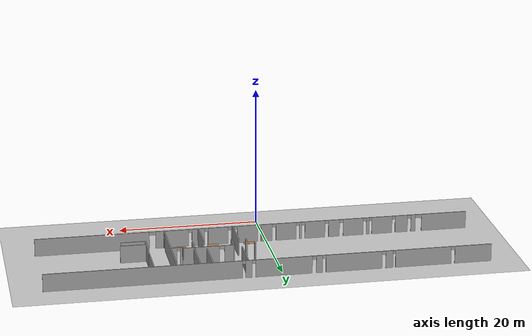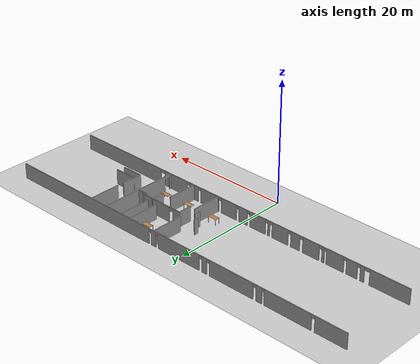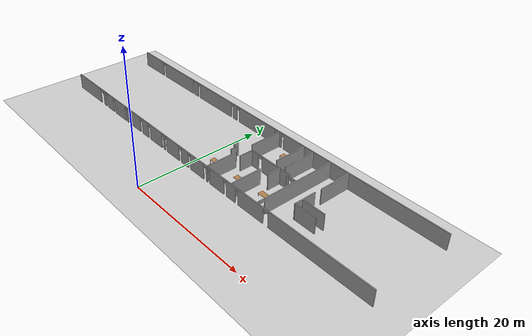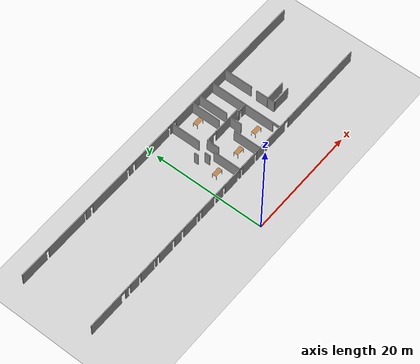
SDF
<sdf version="1.6">
 <world name="default">
  <model name="ground_plane">
   <static>1</static>
   <link name="link">
    <collision name="collision">
     <geometry><plane><normal>0 0 1</normal><size>100 100</size></plane></geometry>
     <surface><friction><ode><mu>100</mu><mu2>50</mu2></ode></friction></surface>
    </collision>
    <visual name="visual">
     <cast_shadows>0</cast_shadows>
     <geometry><plane><normal>0 0 1</normal><size>100 100</size></plane></geometry>
     <material>
      <script><uri>file://media/materials/scripts/gazebo.material</uri><name>Gazebo/Grey</name></script>
     </material>
    </visual>
   </link>
  </model>
  <model name="se1f1_fin.sdf">
   <pose>1.7543 -3.15003 0 0 -0 0</pose>
   <link name="Wall_0">
    <pose>0 24.0175 0 0 -0 0</pose>
    <visual name="Wall_0_Visual_0">
     <pose>-28.4069 0 1.25 0 -0 0</pose>
     <geometry><box><size>5.18629 0.15 2.5</size></box></geometry>
     <material>
      <script><uri>file://media/materials/scripts/gazebo.material</uri><name>Gazebo/Grey</name></script>
      <ambient>1 1 1 1</ambient>
     </material>
     <meta><layer>0</layer></meta>
    </visual>
    <collision name="Wall_0_Collision_0">
     <geometry><box><size>5.18629 0.15 2.5</size></box></geometry>
     <pose>-28.4069 0 1.25 0 -0 0</pose>
    </collision>
    <visual name="Wall_0_Visual_1">
     <pose>-21.341 0 1.25 0 -0 0</pose>
     <geometry><box><size>7.88001 0.15 2.5</size></box></geometry>
     <material>
      <script><uri>file://media/materials/scripts/gazebo.material</uri><name>Gazebo/Grey</name></script>
      <ambient>1 1 1 1</ambient>
     </material>
     <meta><layer>0</layer></meta>
    </visual>
    <collision name="Wall_0_Collision_1">
     <geometry><box><size>7.88001 0.15 2.5</size></box></geometry>
     <pose>-21.341 0 1.25 0 -0 0</pose>
    </collision>
    <visual name="Wall_0_Visual_2">
     <pose>-16.5312 0 1.25 0 -0 0</pose>
     <geometry><box><size>1.02391 0.15 2.5</size></box></geometry>
     <material>
      <script><uri>file://media/materials/scripts/gazebo.material</uri><name>Gazebo/Grey</name></script>
      <ambient>1 1 1 1</ambient>
     </material>
     <meta><layer>0</layer></meta>
    </visual>
    <collision name="Wall_0_Collision_2">
     <geometry><box><size>1.02391 0.15 2.5</size></box></geometry>
     <pose>-16.5312 0 1.25 0 -0 0</pose>
    </collision>
    <visual name="Wall_0_Visual_3">
     <pose>-11.5728 0 1.25 0 -0 0</pose>
     <geometry><box><size>7.86252 0.15 2.5</size></box></geometry>
     <material>
      <script><uri>file://media/materials/scripts/gazebo.material</uri><name>Gazebo/Grey</name></script>
      <ambient>1 1 1 1</ambient>
     </material>
     <meta><layer>0</layer></meta>
    </visual>
    <collision name="Wall_0_Collision_3">
     <geometry><box><size>7.86252 0.15 2.5</size></box></geometry>
     <pose>-11.5728 0 1.25 0 -0 0</pose>
    </collision>
    <visual name="Wall_0_Visual_4">
     <pose>-6.72368 0 1.25 0 -0 0</pose>
     <geometry><box><size>0.875241 0.15 2.5</size></box></geometry>
     <material>
      <script><uri>file://media/materials/scripts/gazebo.material</uri><name>Gazebo/Grey</name></script>
      <ambient>1 1 1 1</ambient>
     </material>
     <meta><layer>0</layer></meta>
    </visual>
    <collision name="Wall_0_Collision_4">
     <geometry><box><size>0.875241 0.15 2.5</size></box></geometry>
     <pose>-6.72368 0 1.25 0 -0 0</pose>
    </collision>
    <visual name="Wall_0_Visual_5">
     <pose>-1.80022 0 1.25 0 -0 0</pose>
     <geometry><box><size>7.87127 0.15 2.5</size></box></geometry>
     <material>
      <script><uri>file://media/materials/scripts/gazebo.material</uri><name>Gazebo/Grey</name></script>
      <ambient>1 1 1 1</ambient>
     </material>
     <meta><layer>0</layer></meta>
    </visual>
    <collision name="Wall_0_Collision_5">
     <geometry><box><size>7.87127 0.15 2.5</size></box></geometry>
     <pose>-1.80022 0 1.25 0 -0 0</pose>
    </collision>
    <visual name="Wall_0_Visual_6">
     <pose>3.06638 0 1.25 0 -0 0</pose>
     <geometry><box><size>0.901476 0.15 2.5</size></box></geometry>
     <material>
      <script><uri>file://media/materials/scripts/gazebo.material</uri><name>Gazebo/Grey</name></script>
      <ambient>1 1 1 1</ambient>
     </material>
     <meta><layer>0</layer></meta>
    </visual>
    <collision name="Wall_0_Collision_6">
     <geometry><box><size>0.901476 0.15 2.5</size></box></geometry>
     <pose>3.06638 0 1.25 0 -0 0</pose>
    </collision>
    <visual name="Wall_0_Visual_7">
     <pose>17.4637 0 1.25 0 -0 0</pose>
     <geometry><box><size>27.0726 0.15 2.5</size></box></geometry>
     <material>
      <script><uri>file://media/materials/scripts/gazebo.material</uri><name>Gazebo/Grey</name></script>
      <ambient>1 1 1 1</ambient>
     </material>
     <meta><layer>0</layer></meta>
    </visual>
    <collision name="Wall_0_Collision_7">
     <geometry><box><size>27.0726 0.15 2.5</size></box></geometry>
     <pose>17.4637 0 1.25 0 -0 0</pose>
    </collision>
    <visual name="Wall_0_Visual_8">
     <pose>-25.5474 0 2.25 0 -0 0</pose>
     <geometry><box><size>0.532709 0.15 0.5</size></box></geometry>
     <material>
      <script><uri>file://media/materials/scripts/gazebo.material</uri><name>Gazebo/Grey</name></script>
      <ambient>1 1 1 1</ambient>
     </material>
     <meta><layer>0</layer></meta>
    </visual>
    <collision name="Wall_0_Collision_8">
     <geometry><box><size>0.532709 0.15 0.5</size></box></geometry>
     <pose>-25.5474 0 2.25 0 -0 0</pose>
    </collision>
    <visual name="Wall_0_Visual_9">
     <pose>-17.2221 0 2.25 0 -0 0</pose>
     <geometry><box><size>0.357808 0.15 0.5</size></box></geometry>
     <material>
      <script><uri>file://media/materials/scripts/gazebo.material</uri><name>Gazebo/Grey</name></script>
      <ambient>1 1 1 1</ambient>
     </material>
     <meta><layer>0</layer></meta>
    </visual>
    <collision name="Wall_0_Collision_9">
     <geometry><box><size>0.357808 0.15 0.5</size></box></geometry>
     <pose>-17.2221 0 2.25 0 -0 0</pose>
    </collision>
    <visual name="Wall_0_Visual_10">
     <pose>-15.7617 0 2.25 0 -0 0</pose>
     <geometry><box><size>0.515219 0.15 0.5</size></box></geometry>
     <material>
      <script><uri>file://media/materials/scripts/gazebo.material</uri><name>Gazebo/Grey</name></script>
      <ambient>1 1 1 1</ambient>
     </material>
     <meta><layer>0</layer></meta>
    </visual>
    <collision name="Wall_0_Collision_10">
     <geometry><box><size>0.515219 0.15 0.5</size></box></geometry>
     <pose>-15.7617 0 2.25 0 -0 0</pose>
    </collision>
    <visual name="Wall_0_Visual_11">
     <pose>-7.40142 0 2.25 0 -0 0</pose>
     <geometry><box><size>0.480239 0.15 0.5</size></box></geometry>
     <material>
      <script><uri>file://media/materials/scripts/gazebo.material</uri><name>Gazebo/Grey</name></script>
      <ambient>1 1 1 1</ambient>
     </material>
     <meta><layer>0</layer></meta>
    </visual>
    <collision name="Wall_0_Collision_11">
     <geometry><box><size>0.480239 0.15 0.5</size></box></geometry>
     <pose>-7.40142 0 2.25 0 -0 0</pose>
    </collision>
    <visual name="Wall_0_Visual_12">
     <pose>-6.01096 0 2.25 0 -0 0</pose>
     <geometry><box><size>0.550199 0.15 0.5</size></box></geometry>
     <material>
      <script><uri>file://media/materials/scripts/gazebo.material</uri><name>Gazebo/Grey</name></script>
      <ambient>1 1 1 1</ambient>
     </material>
     <meta><layer>0</layer></meta>
    </visual>
    <collision name="Wall_0_Collision_12">
     <geometry><box><size>0.550199 0.15 0.5</size></box></geometry>
     <pose>-6.01096 0 2.25 0 -0 0</pose>
    </collision>
    <visual name="Wall_0_Visual_13">
     <pose>2.37553 0 2.25 0 -0 0</pose>
     <geometry><box><size>0.480239 0.15 0.5</size></box></geometry>
     <material>
      <script><uri>file://media/materials/scripts/gazebo.material</uri><name>Gazebo/Grey</name></script>
      <ambient>1 1 1 1</ambient>
     </material>
     <meta><layer>0</layer></meta>
    </visual>
    <collision name="Wall_0_Collision_13">
     <geometry><box><size>0.480239 0.15 0.5</size></box></geometry>
     <pose>2.37553 0 2.25 0 -0 0</pose>
    </collision>
    <visual name="Wall_0_Visual_14">
     <pose>3.72226 0 2.25 0 -0 0</pose>
     <geometry><box><size>0.410278 0.15 0.5</size></box></geometry>
     <material>
      <script><uri>file://media/materials/scripts/gazebo.material</uri><name>Gazebo/Grey</name></script>
      <ambient>1 1 1 1</ambient>
     </material>
     <meta><layer>0</layer></meta>
    </visual>
    <collision name="Wall_0_Collision_14">
     <geometry><box><size>0.410278 0.15 0.5</size></box></geometry>
     <pose>3.72226 0 2.25 0 -0 0</pose>
    </collision>
   </link>
   <link name="Wall_108">
    <collision name="Wall_108_Collision">
     <geometry><box><size>5 0.15 2.5</size></box></geometry>
     <pose>0 0 1.25 0 -0 0</pose>
    </collision>
    <visual name="Wall_108_Visual">
     <pose>0 0 1.25 0 -0 0</pose>
     <geometry><box><size>5 0.15 2.5</size></box></geometry>
     <material>
      <script><uri>file://media/materials/scripts/gazebo.material</uri><name>Gazebo/Grey</name></script>
      <ambient>1 1 1 1</ambient>
     </material>
     <meta><layer>0</layer></meta>
    </visual>
    <pose>3.03784 13.3935 0 0 -0 1.5708</pose>
   </link>
   <link name="Wall_110">
    <collision name="Wall_110_Collision">
     <geometry><box><size>5 0.15 2.5</size></box></geometry>
     <pose>0 0 1.25 0 -0 0</pose>
    </collision>
    <visual name="Wall_110_Visual">
     <pose>0 0 1.25 0 -0 0</pose>
     <geometry><box><size>5 0.15 2.5</size></box></geometry>
     <material>
      <script><uri>file://media/materials/scripts/gazebo.material</uri><name>Gazebo/Grey</name></script>
      <ambient>1 1 1 1</ambient>
     </material>
     <meta><layer>0</layer></meta>
    </visual>
    <pose>7.95255 13.3935 0 0 -0 1.5708</pose>
   </link>
   <link name="Wall_126">
    <collision name="Wall_126_Collision">
     <geometry><box><size>5.25 0.15 2.5</size></box></geometry>
     <pose>0 0 1.25 0 -0 0</pose>
    </collision>
    <visual name="Wall_126_Visual">
     <pose>0 0 1.25 0 -0 0</pose>
     <geometry><box><size>5.25 0.15 2.5</size></box></geometry>
     <material>
      <script><uri>file://media/materials/scripts/gazebo.material</uri><name>Gazebo/Grey</name></script>
      <ambient>1 1 1 1</ambient>
     </material>
     <meta><layer>0</layer></meta>
    </visual>
    <pose>3.06714 21.3539 0 0 -0 1.5708</pose>
   </link>
   <link name="Wall_128">
    <collision name="Wall_128_Collision">
     <geometry><box><size>5.25 0.15 2.5</size></box></geometry>
     <pose>0 0 1.25 0 -0 0</pose>
    </collision>
    <visual name="Wall_128_Visual">
     <pose>0 0 1.25 0 -0 0</pose>
     <geometry><box><size>5.25 0.15 2.5</size></box></geometry>
     <material>
      <script><uri>file://media/materials/scripts/gazebo.material</uri><name>Gazebo/Grey</name></script>
      <ambient>1 1 1 1</ambient>
     </material>
     <meta><layer>0</layer></meta>
    </visual>
    <pose>7.95474 21.3941 0 0 -0 1.5708</pose>
   </link>
   <link name="Wall_130">
    <collision name="Wall_130_Collision">
     <geometry><box><size>5.25 0.15 2.5</size></box></geometry>
     <pose>0 0 1.25 0 -0 0</pose>
    </collision>
    <visual name="Wall_130_Visual">
     <pose>0 0 1.25 0 -0 0</pose>
     <geometry><box><size>5.25 0.15 2.5</size></box></geometry>
     <material>
      <script><uri>file://media/materials/scripts/gazebo.material</uri><name>Gazebo/Grey</name></script>
      <ambient>1 1 1 1</ambient>
     </material>
     <meta><layer>0</layer></meta>
    </visual>
    <pose>9.70462 21.3338 0 0 -0 1.5708</pose>
   </link>
   <link name="Wall_132">
    <collision name="Wall_132_Collision">
     <geometry><box><size>5.25 0.15 2.5</size></box></geometry>
     <pose>0 0 1.25 0 -0 0</pose>
    </collision>
    <visual name="Wall_132_Visual">
     <pose>0 0 1.25 0 -0 0</pose>
     <geometry><box><size>5.25 0.15 2.5</size></box></geometry>
     <material>
      <script><uri>file://media/materials/scripts/gazebo.material</uri><name>Gazebo/Grey</name></script>
      <ambient>1 1 1 1</ambient>
     </material>
     <meta><layer>0</layer></meta>
    </visual>
    <pose>15.9832 21.4565 0 0 0 -1.5708</pose>
   </link>
   <link name="Wall_137">
    <collision name="Wall_137_Collision">
     <geometry><box><size>3.5 0.15 2.5</size></box></geometry>
     <pose>0 0 1.25 0 -0 0</pose>
    </collision>
    <visual name="Wall_137_Visual">
     <pose>0 0 1.25 0 -0 0</pose>
     <geometry><box><size>3.5 0.15 2.5</size></box></geometry>
     <material>
      <script><uri>file://media/materials/scripts/gazebo.material</uri><name>Gazebo/Grey</name></script>
      <ambient>1 1 1 1</ambient>
     </material>
     <meta><layer>0</layer></meta>
    </visual>
    <pose>15.9032 16.0402 0 0 0 -1.5708</pose>
   </link>
   <link name="Wall_138">
    <collision name="Wall_138_Collision">
     <geometry><box><size>3.5 0.15 2.5</size></box></geometry>
     <pose>0 0 1.25 0 -0 0</pose>
    </collision>
    <visual name="Wall_138_Visual">
     <pose>0 0 1.25 0 -0 0</pose>
     <geometry><box><size>3.5 0.15 2.5</size></box></geometry>
     <material>
      <script><uri>file://media/materials/scripts/gazebo.material</uri><name>Gazebo/Grey</name></script>
      <ambient>1 1 1 1</ambient>
     </material>
     <meta><layer>0</layer></meta>
    </visual>
    <pose>17.5782 14.3652 0 0 -0 0</pose>
   </link>
   <link name="Wall_145">
    <collision name="Wall_145_Collision">
     <geometry><box><size>3.75 0.15 2.5</size></box></geometry>
     <pose>0 0 1.25 0 -0 0</pose>
    </collision>
    <visual name="Wall_145_Visual">
     <pose>0 0 1.25 0 -0 0</pose>
     <geometry><box><size>3.75 0.15 2.5</size></box></geometry>
     <material>
      <script><uri>file://media/materials/scripts/gazebo.material</uri><name>Gazebo/Grey</name></script>
      <ambient>1 1 1 1</ambient>
     </material>
     <meta><layer>0</layer></meta>
    </visual>
    <pose>17.7032 15.6152 0 0 -0 3.14159</pose>
   </link>
   <link name="Wall_16">
    <pose>12.8217 17.4594 0 0 0 -1.5708</pose>
    <visual name="Wall_16_Visual_0">
     <pose>-0.617306 0 1.25 0 -0 0</pose>
     <geometry><box><size>11.7654 0.15 2.5</size></box></geometry>
     <material>
      <script><uri>file://media/materials/scripts/gazebo.material</uri><name>Gazebo/Grey</name></script>
      <ambient>1 1 1 1</ambient>
     </material>
     <meta><layer>0</layer></meta>
    </visual>
    <collision name="Wall_16_Collision_0">
     <geometry><box><size>11.7654 0.15 2.5</size></box></geometry>
     <pose>-0.617306 0 1.25 0 -0 0</pose>
    </collision>
    <visual name="Wall_16_Visual_1">
     <pose>6.33269 0 1.25 0 -0 0</pose>
     <geometry><box><size>0.334613 0.15 2.5</size></box></geometry>
     <material>
      <script><uri>file://media/materials/scripts/gazebo.material</uri><name>Gazebo/Grey</name></script>
      <ambient>1 1 1 1</ambient>
     </material>
     <meta><layer>0</layer></meta>
    </visual>
    <collision name="Wall_16_Collision_1">
     <geometry><box><size>0.334613 0.15 2.5</size></box></geometry>
     <pose>6.33269 0 1.25 0 -0 0</pose>
    </collision>
    <visual name="Wall_16_Visual_2">
     <pose>5.71539 0 2.25 0 -0 0</pose>
     <geometry><box><size>0.9 0.15 0.5</size></box></geometry>
     <material>
      <script><uri>file://media/materials/scripts/gazebo.material</uri><name>Gazebo/Grey</name></script>
      <ambient>1 1 1 1</ambient>
     </material>
     <meta><layer>0</layer></meta>
    </visual>
    <collision name="Wall_16_Collision_2">
     <geometry><box><size>0.9 0.15 0.5</size></box></geometry>
     <pose>5.71539 0 2.25 0 -0 0</pose>
    </collision>
   </link>
   <link name="Wall_32">
    <collision name="Wall_32_Collision">
     <geometry><box><size>0.75 0.15 2.5</size></box></geometry>
     <pose>0 0 1.25 0 -0 0</pose>
    </collision>
    <visual name="Wall_32_Visual">
     <pose>0 0 1.25 0 -0 0</pose>
     <geometry><box><size>0.75 0.15 2.5</size></box></geometry>
     <material>
      <script><uri>file://media/materials/scripts/gazebo.material</uri><name>Gazebo/Grey</name></script>
      <ambient>1 1 1 1</ambient>
     </material>
     <meta><layer>0</layer></meta>
    </visual>
    <pose>1.01146 17.6493 0 0 -0 1.5708</pose>
   </link>
   <link name="Wall_36">
    <collision name="Wall_36_Collision">
     <geometry><box><size>2.25 0.15 2.5</size></box></geometry>
     <pose>0 0 1.25 0 -0 0</pose>
    </collision>
    <visual name="Wall_36_Visual">
     <pose>0 0 1.25 0 -0 0</pose>
     <geometry><box><size>2.25 0.15 2.5</size></box></geometry>
     <material>
      <script><uri>file://media/materials/scripts/gazebo.material</uri><name>Gazebo/Grey</name></script>
      <ambient>1 1 1 1</ambient>
     </material>
     <meta><layer>0</layer></meta>
    </visual>
    <pose>4.04388 16.883 0 0 -0 1.5708</pose>
   </link>
   <link name="Wall_37">
    <pose>7.59388 17.933 0 0 -0 0</pose>
    <visual name="Wall_37_Visual_0">
     <pose>-2.9184 0 1.25 0 -0 0</pose>
     <geometry><box><size>1.41319 0.15 2.5</size></box></geometry>
     <material>
      <script><uri>file://media/materials/scripts/gazebo.material</uri><name>Gazebo/Grey</name></script>
      <ambient>1 1 1 1</ambient>
     </material>
     <meta><layer>0</layer></meta>
    </visual>
    <collision name="Wall_37_Collision_0">
     <geometry><box><size>1.41319 0.15 2.5</size></box></geometry>
     <pose>-2.9184 0 1.25 0 -0 0</pose>
    </collision>
    <visual name="Wall_37_Visual_1">
     <pose>1.06208 0 1.25 0 -0 0</pose>
     <geometry><box><size>5.12584 0.15 2.5</size></box></geometry>
     <material>
      <script><uri>file://media/materials/scripts/gazebo.material</uri><name>Gazebo/Grey</name></script>
      <ambient>1 1 1 1</ambient>
     </material>
     <meta><layer>0</layer></meta>
    </visual>
    <collision name="Wall_37_Collision_1">
     <geometry><box><size>5.12584 0.15 2.5</size></box></geometry>
     <pose>1.06208 0 1.25 0 -0 0</pose>
    </collision>
    <visual name="Wall_37_Visual_2">
     <pose>-1.85632 0 2.25 0 -0 0</pose>
     <geometry><box><size>0.710964 0.15 0.5</size></box></geometry>
     <material>
      <script><uri>file://media/materials/scripts/gazebo.material</uri><name>Gazebo/Grey</name></script>
      <ambient>1 1 1 1</ambient>
     </material>
     <meta><layer>0</layer></meta>
    </visual>
    <collision name="Wall_37_Collision_2">
     <geometry><box><size>0.710964 0.15 0.5</size></box></geometry>
     <pose>-1.85632 0 2.25 0 -0 0</pose>
    </collision>
   </link>
   <link name="Wall_38">
    <collision name="Wall_38_Collision">
     <geometry><box><size>0.5 0.15 2.5</size></box></geometry>
     <pose>0 0 1.25 0 -0 0</pose>
    </collision>
    <visual name="Wall_38_Visual">
     <pose>0 0 1.25 0 -0 0</pose>
     <geometry><box><size>0.5 0.15 2.5</size></box></geometry>
     <material>
      <script><uri>file://media/materials/scripts/gazebo.material</uri><name>Gazebo/Grey</name></script>
      <ambient>1 1 1 1</ambient>
     </material>
     <meta><layer>0</layer></meta>
    </visual>
    <pose>11.1439 17.758 0 0 0 -1.5708</pose>
   </link>
   <link name="Wall_39">
    <pose>11.9439 17.583 0 0 -0 0</pose>
    <visual name="Wall_39_Visual_0">
     <pose>-0.645566 0 1.25 0 -0 0</pose>
     <geometry><box><size>0.458868 0.15 2.5</size></box></geometry>
     <material>
      <script><uri>file://media/materials/scripts/gazebo.material</uri><name>Gazebo/Grey</name></script>
      <ambient>1 1 1 1</ambient>
     </material>
     <meta><layer>0</layer></meta>
    </visual>
    <collision name="Wall_39_Collision_0">
     <geometry><box><size>0.458868 0.15 2.5</size></box></geometry>
     <pose>-0.645566 0 1.25 0 -0 0</pose>
    </collision>
    <visual name="Wall_39_Visual_1">
     <pose>0.443684 0 1.25 0 -0 0</pose>
     <geometry><box><size>0.862632 0.15 2.5</size></box></geometry>
     <material>
      <script><uri>file://media/materials/scripts/gazebo.material</uri><name>Gazebo/Grey</name></script>
      <ambient>1 1 1 1</ambient>
     </material>
     <meta><layer>0</layer></meta>
    </visual>
    <collision name="Wall_39_Collision_1">
     <geometry><box><size>0.862632 0.15 2.5</size></box></geometry>
     <pose>0.443684 0 1.25 0 -0 0</pose>
    </collision>
    <visual name="Wall_39_Visual_2">
     <pose>-0.201882 0 2.25 0 -0 0</pose>
     <geometry><box><size>0.4285 0.15 0.5</size></box></geometry>
     <material>
      <script><uri>file://media/materials/scripts/gazebo.material</uri><name>Gazebo/Grey</name></script>
      <ambient>1 1 1 1</ambient>
     </material>
     <meta><layer>0</layer></meta>
    </visual>
    <collision name="Wall_39_Collision_2">
     <geometry><box><size>0.4285 0.15 0.5</size></box></geometry>
     <pose>-0.201882 0 2.25 0 -0 0</pose>
    </collision>
   </link>
   <link name="Wall_41">
    <collision name="Wall_41_Collision">
     <geometry><box><size>2.25 0.15 2.5</size></box></geometry>
     <pose>0 0 1.25 0 -0 0</pose>
    </collision>
    <visual name="Wall_41_Visual">
     <pose>0 0 1.25 0 -0 0</pose>
     <geometry><box><size>2.25 0.15 2.5</size></box></geometry>
     <material>
      <script><uri>file://media/materials/scripts/gazebo.material</uri><name>Gazebo/Grey</name></script>
      <ambient>1 1 1 1</ambient>
     </material>
     <meta><layer>0</layer></meta>
    </visual>
    <pose>9.52352 16.8845 0 0 0 -1.5708</pose>
   </link>
   <link name="Wall_48">
    <collision name="Wall_48_Collision">
     <geometry><box><size>1 0.15 2.5</size></box></geometry>
     <pose>0 0 1.25 0 -0 0</pose>
    </collision>
    <visual name="Wall_48_Visual">
     <pose>0 0 1.25 0 -0 0</pose>
     <geometry><box><size>1 0.15 2.5</size></box></geometry>
     <material>
      <script><uri>file://media/materials/scripts/gazebo.material</uri><name>Gazebo/Grey</name></script>
      <ambient>1 1 1 1</ambient>
     </material>
     <meta><layer>0</layer></meta>
    </visual>
    <pose>2.04618 16.3428 0 0 0 -1.5708</pose>
   </link>
   <link name="Wall_5">
    <pose>0 10.9175 0 0 -0 3.14159</pose>
    <visual name="Wall_5_Visual_0">
     <pose>-22.9555 0 1.25 0 -0 0</pose>
     <geometry><box><size>16.0889 0.15 2.5</size></box></geometry>
     <material>
      <script><uri>file://media/materials/scripts/gazebo.material</uri><name>Gazebo/Grey</name></script>
      <ambient>1 1 1 1</ambient>
     </material>
     <meta><layer>0</layer></meta>
    </visual>
    <collision name="Wall_5_Collision_0">
     <geometry><box><size>16.0889 0.15 2.5</size></box></geometry>
     <pose>-22.9555 0 1.25 0 -0 0</pose>
    </collision>
    <visual name="Wall_5_Visual_1">
     <pose>-11.6838 0 1.25 0 -0 0</pose>
     <geometry><box><size>4.6545 0.15 2.5</size></box></geometry>
     <material>
      <script><uri>file://media/materials/scripts/gazebo.material</uri><name>Gazebo/Grey</name></script>
      <ambient>1 1 1 1</ambient>
     </material>
     <meta><layer>0</layer></meta>
    </visual>
    <collision name="Wall_5_Collision_1">
     <geometry><box><size>4.6545 0.15 2.5</size></box></geometry>
     <pose>-11.6838 0 1.25 0 -0 0</pose>
    </collision>
    <visual name="Wall_5_Visual_2">
     <pose>-7.95785 0 1.25 0 -0 0</pose>
     <geometry><box><size>1.8025 0.15 2.5</size></box></geometry>
     <material>
      <script><uri>file://media/materials/scripts/gazebo.material</uri><name>Gazebo/Grey</name></script>
      <ambient>1 1 1 1</ambient>
     </material>
     <meta><layer>0</layer></meta>
    </visual>
    <collision name="Wall_5_Collision_2">
     <geometry><box><size>1.8025 0.15 2.5</size></box></geometry>
     <pose>-7.95785 0 1.25 0 -0 0</pose>
    </collision>
    <visual name="Wall_5_Visual_3">
     <pose>-5.1346 0 1.25 0 -0 0</pose>
     <geometry><box><size>2.895 0.15 2.5</size></box></geometry>
     <material>
      <script><uri>file://media/materials/scripts/gazebo.material</uri><name>Gazebo/Grey</name></script>
      <ambient>1 1 1 1</ambient>
     </material>
     <meta><layer>0</layer></meta>
    </visual>
    <collision name="Wall_5_Collision_3">
     <geometry><box><size>2.895 0.15 2.5</size></box></geometry>
     <pose>-5.1346 0 1.25 0 -0 0</pose>
    </collision>
    <visual name="Wall_5_Visual_4">
     <pose>-3.07322 0 1.25 0 -0 0</pose>
     <geometry><box><size>0.34775 0.15 2.5</size></box></geometry>
     <material>
      <script><uri>file://media/materials/scripts/gazebo.material</uri><name>Gazebo/Grey</name></script>
      <ambient>1 1 1 1</ambient>
     </material>
     <meta><layer>0</layer></meta>
    </visual>
    <collision name="Wall_5_Collision_4">
     <geometry><box><size>0.34775 0.15 2.5</size></box></geometry>
     <pose>-3.07322 0 1.25 0 -0 0</pose>
    </collision>
    <visual name="Wall_5_Visual_5">
     <pose>-0.896848 0 1.25 0 -0 0</pose>
     <geometry><box><size>2.941 0.15 2.5</size></box></geometry>
     <material>
      <script><uri>file://media/materials/scripts/gazebo.material</uri><name>Gazebo/Grey</name></script>
      <ambient>1 1 1 1</ambient>
     </material>
     <meta><layer>0</layer></meta>
    </visual>
    <collision name="Wall_5_Collision_5">
     <geometry><box><size>2.941 0.15 2.5</size></box></geometry>
     <pose>-0.896848 0 1.25 0 -0 0</pose>
    </collision>
    <visual name="Wall_5_Visual_6">
     <pose>1.85165 0 1.25 0 -0 0</pose>
     <geometry><box><size>1.63 0.15 2.5</size></box></geometry>
     <material>
      <script><uri>file://media/materials/scripts/gazebo.material</uri><name>Gazebo/Grey</name></script>
      <ambient>1 1 1 1</ambient>
     </material>
     <meta><layer>0</layer></meta>
    </visual>
    <collision name="Wall_5_Collision_6">
     <geometry><box><size>1.63 0.15 2.5</size></box></geometry>
     <pose>1.85165 0 1.25 0 -0 0</pose>
    </collision>
    <visual name="Wall_5_Visual_7">
     <pose>4.64903 0 1.25 0 -0 0</pose>
     <geometry><box><size>2.92375 0.15 2.5</size></box></geometry>
     <material>
      <script><uri>file://media/materials/scripts/gazebo.material</uri><name>Gazebo/Grey</name></script>
      <ambient>1 1 1 1</ambient>
     </material>
     <meta><layer>0</layer></meta>
    </visual>
    <collision name="Wall_5_Collision_7">
     <geometry><box><size>2.92375 0.15 2.5</size></box></geometry>
     <pose>4.64903 0 1.25 0 -0 0</pose>
    </collision>
    <visual name="Wall_5_Visual_8">
     <pose>6.72765 0 1.25 0 -0 0</pose>
     <geometry><box><size>0.3535 0.15 2.5</size></box></geometry>
     <material>
      <script><uri>file://media/materials/scripts/gazebo.material</uri><name>Gazebo/Grey</name></script>
      <ambient>1 1 1 1</ambient>
     </material>
     <meta><layer>0</layer></meta>
    </visual>
    <collision name="Wall_5_Collision_8">
     <geometry><box><size>0.3535 0.15 2.5</size></box></geometry>
     <pose>6.72765 0 1.25 0 -0 0</pose>
    </collision>
    <visual name="Wall_5_Visual_9">
     <pose>8.83503 0 1.25 0 -0 0</pose>
     <geometry><box><size>2.91225 0.15 2.5</size></box></geometry>
     <material>
      <script><uri>file://media/materials/scripts/gazebo.material</uri><name>Gazebo/Grey</name></script>
      <ambient>1 1 1 1</ambient>
     </material>
     <meta><layer>0</layer></meta>
    </visual>
    <collision name="Wall_5_Collision_9">
     <geometry><box><size>2.91225 0.15 2.5</size></box></geometry>
     <pose>8.83503 0 1.25 0 -0 0</pose>
    </collision>
    <visual name="Wall_5_Visual_10">
     <pose>11.6123 0 1.25 0 -0 0</pose>
     <geometry><box><size>1.57825 0.15 2.5</size></box></geometry>
     <material>
      <script><uri>file://media/materials/scripts/gazebo.material</uri><name>Gazebo/Grey</name></script>
      <ambient>1 1 1 1</ambient>
     </material>
     <meta><layer>0</layer></meta>
    </visual>
    <collision name="Wall_5_Collision_10">
     <geometry><box><size>1.57825 0.15 2.5</size></box></geometry>
     <pose>11.6123 0 1.25 0 -0 0</pose>
    </collision>
    <visual name="Wall_5_Visual_11">
     <pose>14.4125 0 1.25 0 -0 0</pose>
     <geometry><box><size>2.91225 0.15 2.5</size></box></geometry>
     <material>
      <script><uri>file://media/materials/scripts/gazebo.material</uri><name>Gazebo/Grey</name></script>
      <ambient>1 1 1 1</ambient>
     </material>
     <meta><layer>0</layer></meta>
    </visual>
    <collision name="Wall_5_Collision_11">
     <geometry><box><size>2.91225 0.15 2.5</size></box></geometry>
     <pose>14.4125 0 1.25 0 -0 0</pose>
    </collision>
    <visual name="Wall_5_Visual_12">
     <pose>16.5544 0 1.25 0 -0 0</pose>
     <geometry><box><size>0.422499 0.15 2.5</size></box></geometry>
     <material>
      <script><uri>file://media/materials/scripts/gazebo.material</uri><name>Gazebo/Grey</name></script>
      <ambient>1 1 1 1</ambient>
     </material>
     <meta><layer>0</layer></meta>
    </visual>
    <collision name="Wall_5_Collision_12">
     <geometry><box><size>0.422499 0.15 2.5</size></box></geometry>
     <pose>16.5544 0 1.25 0 -0 0</pose>
    </collision>
    <visual name="Wall_5_Visual_13">
     <pose>18.6187 0 1.25 0 -0 0</pose>
     <geometry><box><size>2.964 0.15 2.5</size></box></geometry>
     <material>
      <script><uri>file://media/materials/scripts/gazebo.material</uri><name>Gazebo/Grey</name></script>
      <ambient>1 1 1 1</ambient>
     </material>
     <meta><layer>0</layer></meta>
    </visual>
    <collision name="Wall_5_Collision_13">
     <geometry><box><size>2.964 0.15 2.5</size></box></geometry>
     <pose>18.6187 0 1.25 0 -0 0</pose>
    </collision>
    <visual name="Wall_5_Visual_14">
     <pose>21.485 0 1.25 0 -0 0</pose>
     <geometry><box><size>1.81975 0.15 2.5</size></box></geometry>
     <material>
      <script><uri>file://media/materials/scripts/gazebo.material</uri><name>Gazebo/Grey</name></script>
      <ambient>1 1 1 1</ambient>
     </material>
     <meta><layer>0</layer></meta>
    </visual>
    <collision name="Wall_5_Collision_14">
     <geometry><box><size>1.81975 0.15 2.5</size></box></geometry>
     <pose>21.485 0 1.25 0 -0 0</pose>
    </collision>
    <visual name="Wall_5_Visual_15">
     <pose>23.2187 0 1.25 0 -0 0</pose>
     <geometry><box><size>0.6525 0.15 2.5</size></box></geometry>
     <material>
      <script><uri>file://media/materials/scripts/gazebo.material</uri><name>Gazebo/Grey</name></script>
      <ambient>1 1 1 1</ambient>
     </material>
     <meta><layer>0</layer></meta>
    </visual>
    <collision name="Wall_5_Collision_15">
     <geometry><box><size>0.6525 0.15 2.5</size></box></geometry>
     <pose>23.2187 0 1.25 0 -0 0</pose>
    </collision>
    <visual name="Wall_5_Visual_16">
     <pose>27.7225 0 1.25 0 -0 0</pose>
     <geometry><box><size>6.5551 0.15 2.5</size></box></geometry>
     <material>
      <script><uri>file://media/materials/scripts/gazebo.material</uri><name>Gazebo/Grey</name></script>
      <ambient>1 1 1 1</ambient>
     </material>
     <meta><layer>0</layer></meta>
    </visual>
    <collision name="Wall_5_Collision_16">
     <geometry><box><size>6.5551 0.15 2.5</size></box></geometry>
     <pose>27.7225 0 1.25 0 -0 0</pose>
    </collision>
    <visual name="Wall_5_Visual_17">
     <pose>-14.4611 0 2.25 0 -0 0</pose>
     <geometry><box><size>0.9 0.15 0.5</size></box></geometry>
     <material>
      <script><uri>file://media/materials/scripts/gazebo.material</uri><name>Gazebo/Grey</name></script>
      <ambient>1 1 1 1</ambient>
     </material>
     <meta><layer>0</layer></meta>
    </visual>
    <collision name="Wall_5_Collision_17">
     <geometry><box><size>0.9 0.15 0.5</size></box></geometry>
     <pose>-14.4611 0 2.25 0 -0 0</pose>
    </collision>
    <visual name="Wall_5_Visual_18">
     <pose>-9.10785 0 2.25 0 -0 0</pose>
     <geometry><box><size>0.4975 0.15 0.5</size></box></geometry>
     <material>
      <script><uri>file://media/materials/scripts/gazebo.material</uri><name>Gazebo/Grey</name></script>
      <ambient>1 1 1 1</ambient>
     </material>
     <meta><layer>0</layer></meta>
    </visual>
    <collision name="Wall_5_Collision_18">
     <geometry><box><size>0.4975 0.15 0.5</size></box></geometry>
     <pose>-9.10785 0 2.25 0 -0 0</pose>
    </collision>
    <visual name="Wall_5_Visual_19">
     <pose>-6.81935 0 2.25 0 -0 0</pose>
     <geometry><box><size>0.4745 0.15 0.5</size></box></geometry>
     <material>
      <script><uri>file://media/materials/scripts/gazebo.material</uri><name>Gazebo/Grey</name></script>
      <ambient>1 1 1 1</ambient>
     </material>
     <meta><layer>0</layer></meta>
    </visual>
    <collision name="Wall_5_Collision_19">
     <geometry><box><size>0.4745 0.15 0.5</size></box></geometry>
     <pose>-6.81935 0 2.25 0 -0 0</pose>
    </collision>
    <visual name="Wall_5_Visual_20">
     <pose>-3.4671 0 2.25 0 -0 0</pose>
     <geometry><box><size>0.44 0.15 0.5</size></box></geometry>
     <material>
      <script><uri>file://media/materials/scripts/gazebo.material</uri><name>Gazebo/Grey</name></script>
      <ambient>1 1 1 1</ambient>
     </material>
     <meta><layer>0</layer></meta>
    </visual>
    <collision name="Wall_5_Collision_20">
     <geometry><box><size>0.44 0.15 0.5</size></box></geometry>
     <pose>-3.4671 0 2.25 0 -0 0</pose>
    </collision>
    <visual name="Wall_5_Visual_21">
     <pose>-2.63335 0 2.25 0 -0 0</pose>
     <geometry><box><size>0.532 0.15 0.5</size></box></geometry>
     <material>
      <script><uri>file://media/materials/scripts/gazebo.material</uri><name>Gazebo/Grey</name></script>
      <ambient>1 1 1 1</ambient>
     </material>
     <meta><layer>0</layer></meta>
    </visual>
    <collision name="Wall_5_Collision_21">
     <geometry><box><size>0.532 0.15 0.5</size></box></geometry>
     <pose>-2.63335 0 2.25 0 -0 0</pose>
    </collision>
    <visual name="Wall_5_Visual_22">
     <pose>0.805151 0 2.25 0 -0 0</pose>
     <geometry><box><size>0.463 0.15 0.5</size></box></geometry>
     <material>
      <script><uri>file://media/materials/scripts/gazebo.material</uri><name>Gazebo/Grey</name></script>
      <ambient>1 1 1 1</ambient>
     </material>
     <meta><layer>0</layer></meta>
    </visual>
    <collision name="Wall_5_Collision_22">
     <geometry><box><size>0.463 0.15 0.5</size></box></geometry>
     <pose>0.805151 0 2.25 0 -0 0</pose>
    </collision>
    <visual name="Wall_5_Visual_23">
     <pose>2.9269 0 2.25 0 -0 0</pose>
     <geometry><box><size>0.5205 0.15 0.5</size></box></geometry>
     <material>
      <script><uri>file://media/materials/scripts/gazebo.material</uri><name>Gazebo/Grey</name></script>
      <ambient>1 1 1 1</ambient>
     </material>
     <meta><layer>0</layer></meta>
    </visual>
    <collision name="Wall_5_Collision_23">
     <geometry><box><size>0.5205 0.15 0.5</size></box></geometry>
     <pose>2.9269 0 2.25 0 -0 0</pose>
    </collision>
    <visual name="Wall_5_Visual_24">
     <pose>6.3309 0 2.25 0 -0 0</pose>
     <geometry><box><size>0.44 0.15 0.5</size></box></geometry>
     <material>
      <script><uri>file://media/materials/scripts/gazebo.material</uri><name>Gazebo/Grey</name></script>
      <ambient>1 1 1 1</ambient>
     </material>
     <meta><layer>0</layer></meta>
    </visual>
    <collision name="Wall_5_Collision_24">
     <geometry><box><size>0.44 0.15 0.5</size></box></geometry>
     <pose>6.3309 0 2.25 0 -0 0</pose>
    </collision>
    <visual name="Wall_5_Visual_25">
     <pose>7.14165 0 2.25 0 -0 0</pose>
     <geometry><box><size>0.4745 0.15 0.5</size></box></geometry>
     <material>
      <script><uri>file://media/materials/scripts/gazebo.material</uri><name>Gazebo/Grey</name></script>
      <ambient>1 1 1 1</ambient>
     </material>
     <meta><layer>0</layer></meta>
    </visual>
    <collision name="Wall_5_Collision_25">
     <geometry><box><size>0.4745 0.15 0.5</size></box></geometry>
     <pose>7.14165 0 2.25 0 -0 0</pose>
    </collision>
    <visual name="Wall_5_Visual_26">
     <pose>10.5572 0 2.25 0 -0 0</pose>
     <geometry><box><size>0.532 0.15 0.5</size></box></geometry>
     <material>
      <script><uri>file://media/materials/scripts/gazebo.material</uri><name>Gazebo/Grey</name></script>
      <ambient>1 1 1 1</ambient>
     </material>
     <meta><layer>0</layer></meta>
    </visual>
    <collision name="Wall_5_Collision_26">
     <geometry><box><size>0.532 0.15 0.5</size></box></geometry>
     <pose>10.5572 0 2.25 0 -0 0</pose>
    </collision>
    <visual name="Wall_5_Visual_27">
     <pose>12.6789 0 2.25 0 -0 0</pose>
     <geometry><box><size>0.555 0.15 0.5</size></box></geometry>
     <material>
      <script><uri>file://media/materials/scripts/gazebo.material</uri><name>Gazebo/Grey</name></script>
      <ambient>1 1 1 1</ambient>
     </material>
     <meta><layer>0</layer></meta>
    </visual>
    <collision name="Wall_5_Collision_27">
     <geometry><box><size>0.555 0.15 0.5</size></box></geometry>
     <pose>12.6789 0 2.25 0 -0 0</pose>
    </collision>
    <visual name="Wall_5_Visual_28">
     <pose>16.1059 0 2.25 0 -0 0</pose>
     <geometry><box><size>0.4745 0.15 0.5</size></box></geometry>
     <material>
      <script><uri>file://media/materials/scripts/gazebo.material</uri><name>Gazebo/Grey</name></script>
      <ambient>1 1 1 1</ambient>
     </material>
     <meta><layer>0</layer></meta>
    </visual>
    <collision name="Wall_5_Collision_28">
     <geometry><box><size>0.4745 0.15 0.5</size></box></geometry>
     <pose>16.1059 0 2.25 0 -0 0</pose>
    </collision>
    <visual name="Wall_5_Visual_29">
     <pose>16.9512 0 2.25 0 -0 0</pose>
     <geometry><box><size>0.371 0.15 0.5</size></box></geometry>
     <material>
      <script><uri>file://media/materials/scripts/gazebo.material</uri><name>Gazebo/Grey</name></script>
      <ambient>1 1 1 1</ambient>
     </material>
     <meta><layer>0</layer></meta>
    </visual>
    <collision name="Wall_5_Collision_29">
     <geometry><box><size>0.371 0.15 0.5</size></box></geometry>
     <pose>16.9512 0 2.25 0 -0 0</pose>
    </collision>
    <visual name="Wall_5_Visual_30">
     <pose>20.3379 0 2.25 0 -0 0</pose>
     <geometry><box><size>0.4745 0.15 0.5</size></box></geometry>
     <material>
      <script><uri>file://media/materials/scripts/gazebo.material</uri><name>Gazebo/Grey</name></script>
      <ambient>1 1 1 1</ambient>
     </material>
     <meta><layer>0</layer></meta>
    </visual>
    <collision name="Wall_5_Collision_30">
     <geometry><box><size>0.4745 0.15 0.5</size></box></geometry>
     <pose>20.3379 0 2.25 0 -0 0</pose>
    </collision>
    <visual name="Wall_5_Visual_31">
     <pose>22.6437 0 2.25 0 -0 0</pose>
     <geometry><box><size>0.4975 0.15 0.5</size></box></geometry>
     <material>
      <script><uri>file://media/materials/scripts/gazebo.material</uri><name>Gazebo/Grey</name></script>
      <ambient>1 1 1 1</ambient>
     </material>
     <meta><layer>0</layer></meta>
    </visual>
    <collision name="Wall_5_Collision_31">
     <geometry><box><size>0.4975 0.15 0.5</size></box></geometry>
     <pose>22.6437 0 2.25 0 -0 0</pose>
    </collision>
    <visual name="Wall_5_Visual_32">
     <pose>23.9949 0 2.25 0 -0 0</pose>
     <geometry><box><size>0.9 0.15 0.5</size></box></geometry>
     <material>
      <script><uri>file://media/materials/scripts/gazebo.material</uri><name>Gazebo/Grey</name></script>
      <ambient>1 1 1 1</ambient>
     </material>
     <meta><layer>0</layer></meta>
    </visual>
    <collision name="Wall_5_Collision_32">
     <geometry><box><size>0.9 0.15 0.5</size></box></geometry>
     <pose>23.9949 0 2.25 0 -0 0</pose>
    </collision>
   </link>
   <static>1</static>
  </model>
  <model name="table_4">
   <static>1</static>
   <link name="link">
    <collision name="surface">
     <pose>0 0 1 0 -0 0</pose>
     <geometry><box><size>1.5 0.8 0.03</size></box></geometry>
     <surface><friction><ode><mu>0.6</mu><mu2>0.6</mu2></ode></friction></surface>
    </collision>
    <visual name="visual1">
     <pose>0 0 1 0 -0 0</pose>
     <geometry><box><size>1.5 0.8 0.03</size></box></geometry>
     <material>
      <script><uri>file://media/materials/scripts/gazebo.material</uri><name>Gazebo/Wood</name></script>
     </material>
    </visual>
    <collision name="front_left_leg">
     <pose>0.68 0.38 0.5 0 -0 0</pose>
     <geometry><cylinder><radius>0.02</radius><length>1</length></cylinder></geometry>
    </collision>
    <visual name="front_left_leg">
     <pose>0.68 0.38 0.5 0 -0 0</pose>
     <geometry><cylinder><radius>0.02</radius><length>1</length></cylinder></geometry>
     <material>
      <script><uri>file://media/materials/scripts/gazebo.material</uri><name>Gazebo/Grey</name></script>
     </material>
    </visual>
    <collision name="front_right_leg">
     <pose>0.68 -0.38 0.5 0 -0 0</pose>
     <geometry><cylinder><radius>0.02</radius><length>1</length></cylinder></geometry>
    </collision>
    <visual name="front_right_leg">
     <pose>0.68 -0.38 0.5 0 -0 0</pose>
     <geometry><cylinder><radius>0.02</radius><length>1</length></cylinder></geometry>
     <material>
      <script><uri>file://media/materials/scripts/gazebo.material</uri><name>Gazebo/Grey</name></script>
     </material>
    </visual>
    <collision name="back_right_leg">
     <pose>-0.68 -0.38 0.5 0 -0 0</pose>
     <geometry><cylinder><radius>0.02</radius><length>1</length></cylinder></geometry>
    </collision>
    <visual name="back_right_leg">
     <pose>-0.68 -0.38 0.5 0 -0 0</pose>
     <geometry><cylinder><radius>0.02</radius><length>1</length></cylinder></geometry>
     <material>
      <script><uri>file://media/materials/scripts/gazebo.material</uri><name>Gazebo/Grey</name></script>
     </material>
    </visual>
    <collision name="back_left_leg">
     <pose>-0.68 0.38 0.5 0 -0 0</pose>
     <geometry><cylinder><radius>0.02</radius><length>1</length></cylinder></geometry>
    </collision>
    <visual name="back_left_leg">
     <pose>-0.68 0.38 0.5 0 -0 0</pose>
     <geometry><cylinder><radius>0.02</radius><length>1</length></cylinder></geometry>
     <material>
      <script><uri>file://media/materials/scripts/gazebo.material</uri><name>Gazebo/Grey</name></script>
     </material>
    </visual>
   </link>
   <pose>2.97922 10.6554 0 0 -0 0</pose>
  </model>
  <model name="table_5">
   <static>1</static>
   <link name="link">
    <collision name="surface">
     <pose>0 0 1 0 -0 0</pose>
     <geometry><box><size>1.5 0.8 0.03</size></box></geometry>
     <surface><friction><ode><mu>0.6</mu><mu2>0.6</mu2></ode></friction></surface>
    </collision>
    <visual name="visual1">
     <pose>0 0 1 0 -0 0</pose>
     <geometry><box><size>1.5 0.8 0.03</size></box></geometry>
     <material>
      <script><uri>file://media/materials/scripts/gazebo.material</uri><name>Gazebo/Wood</name></script>
     </material>
    </visual>
    <collision name="front_left_leg">
     <pose>0.68 0.38 0.5 0 -0 0</pose>
     <geometry><cylinder><radius>0.02</radius><length>1</length></cylinder></geometry>
    </collision>
    <visual name="front_left_leg">
     <pose>0.68 0.38 0.5 0 -0 0</pose>
     <geometry><cylinder><radius>0.02</radius><length>1</length></cylinder></geometry>
     <material>
      <script><uri>file://media/materials/scripts/gazebo.material</uri><name>Gazebo/Grey</name></script>
     </material>
    </visual>
    <collision name="front_right_leg">
     <pose>0.68 -0.38 0.5 0 -0 0</pose>
     <geometry><cylinder><radius>0.02</radius><length>1</length></cylinder></geometry>
    </collision>
    <visual name="front_right_leg">
     <pose>0.68 -0.38 0.5 0 -0 0</pose>
     <geometry><cylinder><radius>0.02</radius><length>1</length></cylinder></geometry>
     <material>
      <script><uri>file://media/materials/scripts/gazebo.material</uri><name>Gazebo/Grey</name></script>
     </material>
    </visual>
    <collision name="back_right_leg">
     <pose>-0.68 -0.38 0.5 0 -0 0</pose>
     <geometry><cylinder><radius>0.02</radius><length>1</length></cylinder></geometry>
    </collision>
    <visual name="back_right_leg">
     <pose>-0.68 -0.38 0.5 0 -0 0</pose>
     <geometry><cylinder><radius>0.02</radius><length>1</length></cylinder></geometry>
     <material>
      <script><uri>file://media/materials/scripts/gazebo.material</uri><name>Gazebo/Grey</name></script>
     </material>
    </visual>
    <collision name="back_left_leg">
     <pose>-0.68 0.38 0.5 0 -0 0</pose>
     <geometry><cylinder><radius>0.02</radius><length>1</length></cylinder></geometry>
    </collision>
    <visual name="back_left_leg">
     <pose>-0.68 0.38 0.5 0 -0 0</pose>
     <geometry><cylinder><radius>0.02</radius><length>1</length></cylinder></geometry>
     <material>
      <script><uri>file://media/materials/scripts/gazebo.material</uri><name>Gazebo/Grey</name></script>
     </material>
    </visual>
   </link>
   <pose>8.06076 10.5444 0 0 -0 0</pose>
  </model>
  <model name="table_6">
   <static>1</static>
   <link name="link">
    <collision name="surface">
     <pose>0 0 1 0 -0 0</pose>
     <geometry><box><size>1.5 0.8 0.03</size></box></geometry>
     <surface><friction><ode><mu>0.6</mu><mu2>0.6</mu2></ode></friction></surface>
    </collision>
    <visual name="visual1">
     <pose>0 0 1 0 -0 0</pose>
     <geometry><box><size>1.5 0.8 0.03</size></box></geometry>
     <material>
      <script><uri>file://media/materials/scripts/gazebo.material</uri><name>Gazebo/Wood</name></script>
     </material>
    </visual>
    <collision name="front_left_leg">
     <pose>0.68 0.38 0.5 0 -0 0</pose>
     <geometry><cylinder><radius>0.02</radius><length>1</length></cylinder></geometry>
    </collision>
    <visual name="front_left_leg">
     <pose>0.68 0.38 0.5 0 -0 0</pose>
     <geometry><cylinder><radius>0.02</radius><length>1</length></cylinder></geometry>
     <material>
      <script><uri>file://media/materials/scripts/gazebo.material</uri><name>Gazebo/Grey</name></script>
     </material>
    </visual>
    <collision name="front_right_leg">
     <pose>0.68 -0.38 0.5 0 -0 0</pose>
     <geometry><cylinder><radius>0.02</radius><length>1</length></cylinder></geometry>
    </collision>
    <visual name="front_right_leg">
     <pose>0.68 -0.38 0.5 0 -0 0</pose>
     <geometry><cylinder><radius>0.02</radius><length>1</length></cylinder></geometry>
     <material>
      <script><uri>file://media/materials/scripts/gazebo.material</uri><name>Gazebo/Grey</name></script>
     </material>
    </visual>
    <collision name="back_right_leg">
     <pose>-0.68 -0.38 0.5 0 -0 0</pose>
     <geometry><cylinder><radius>0.02</radius><length>1</length></cylinder></geometry>
    </collision>
    <visual name="back_right_leg">
     <pose>-0.68 -0.38 0.5 0 -0 0</pose>
     <geometry><cylinder><radius>0.02</radius><length>1</length></cylinder></geometry>
     <material>
      <script><uri>file://media/materials/scripts/gazebo.material</uri><name>Gazebo/Grey</name></script>
     </material>
    </visual>
    <collision name="back_left_leg">
     <pose>-0.68 0.38 0.5 0 -0 0</pose>
     <geometry><cylinder><radius>0.02</radius><length>1</length></cylinder></geometry>
    </collision>
    <visual name="back_left_leg">
     <pose>-0.68 0.38 0.5 0 -0 0</pose>
     <geometry><cylinder><radius>0.02</radius><length>1</length></cylinder></geometry>
     <material>
      <script><uri>file://media/materials/scripts/gazebo.material</uri><name>Gazebo/Grey</name></script>
     </material>
    </visual>
   </link>
   <pose>12.6703 10.7706 0 0 -0 0</pose>
  </model>
  <model name="table_13">
   <static>1</static>
   <link name="link">
    <collision name="surface">
     <pose>0 0 1 0 -0 0</pose>
     <geometry><box><size>1.5 0.8 0.03</size></box></geometry>
     <surface><friction><ode><mu>0.6</mu><mu2>0.6</mu2></ode></friction></surface>
    </collision>
    <visual name="visual1">
     <pose>0 0 1 0 -0 0</pose>
     <geometry><box><size>1.5 0.8 0.03</size></box></geometry>
     <material>
      <script><uri>file://media/materials/scripts/gazebo.material</uri><name>Gazebo/Wood</name></script>
     </material>
    </visual>
    <collision name="front_left_leg">
     <pose>0.68 0.38 0.5 0 -0 0</pose>
     <geometry><cylinder><radius>0.02</radius><length>1</length></cylinder></geometry>
    </collision>
    <visual name="front_left_leg">
     <pose>0.68 0.38 0.5 0 -0 0</pose>
     <geometry><cylinder><radius>0.02</radius><length>1</length></cylinder></geometry>
     <material>
      <script><uri>file://media/materials/scripts/gazebo.material</uri><name>Gazebo/Grey</name></script>
     </material>
    </visual>
    <collision name="front_right_leg">
     <pose>0.68 -0.38 0.5 0 -0 0</pose>
     <geometry><cylinder><radius>0.02</radius><length>1</length></cylinder></geometry>
    </collision>
    <visual name="front_right_leg">
     <pose>0.68 -0.38 0.5 0 -0 0</pose>
     <geometry><cylinder><radius>0.02</radius><length>1</length></cylinder></geometry>
     <material>
      <script><uri>file://media/materials/scripts/gazebo.material</uri><name>Gazebo/Grey</name></script>
     </material>
    </visual>
    <collision name="back_right_leg">
     <pose>-0.68 -0.38 0.5 0 -0 0</pose>
     <geometry><cylinder><radius>0.02</radius><length>1</length></cylinder></geometry>
    </collision>
    <visual name="back_right_leg">
     <pose>-0.68 -0.38 0.5 0 -0 0</pose>
     <geometry><cylinder><radius>0.02</radius><length>1</length></cylinder></geometry>
     <material>
      <script><uri>file://media/materials/scripts/gazebo.material</uri><name>Gazebo/Grey</name></script>
     </material>
    </visual>
    <collision name="back_left_leg">
     <pose>-0.68 0.38 0.5 0 -0 0</pose>
     <geometry><cylinder><radius>0.02</radius><length>1</length></cylinder></geometry>
    </collision>
    <visual name="back_left_leg">
     <pose>-0.68 0.38 0.5 0 -0 0</pose>
     <geometry><cylinder><radius>0.02</radius><length>1</length></cylinder></geometry>
     <material>
      <script><uri>file://media/materials/scripts/gazebo.material</uri><name>Gazebo/Grey</name></script>
     </material>
    </visual>
   </link>
   <pose>8.35049 18.6624 0 0 -0 0</pose>
  </model>
 </world>
</sdf>
